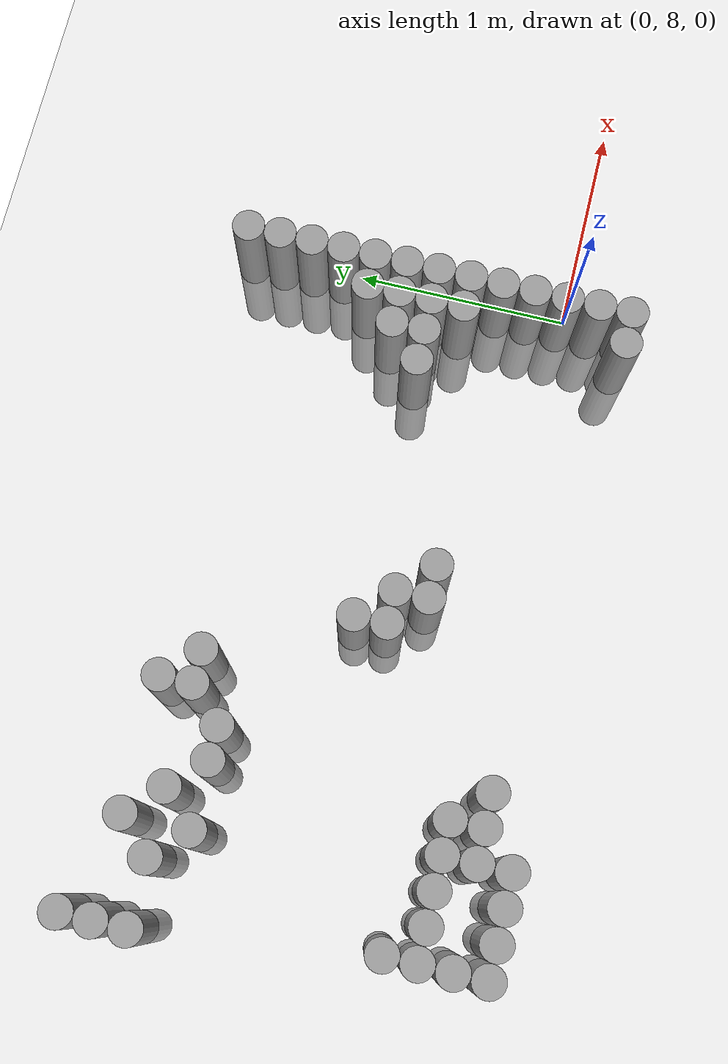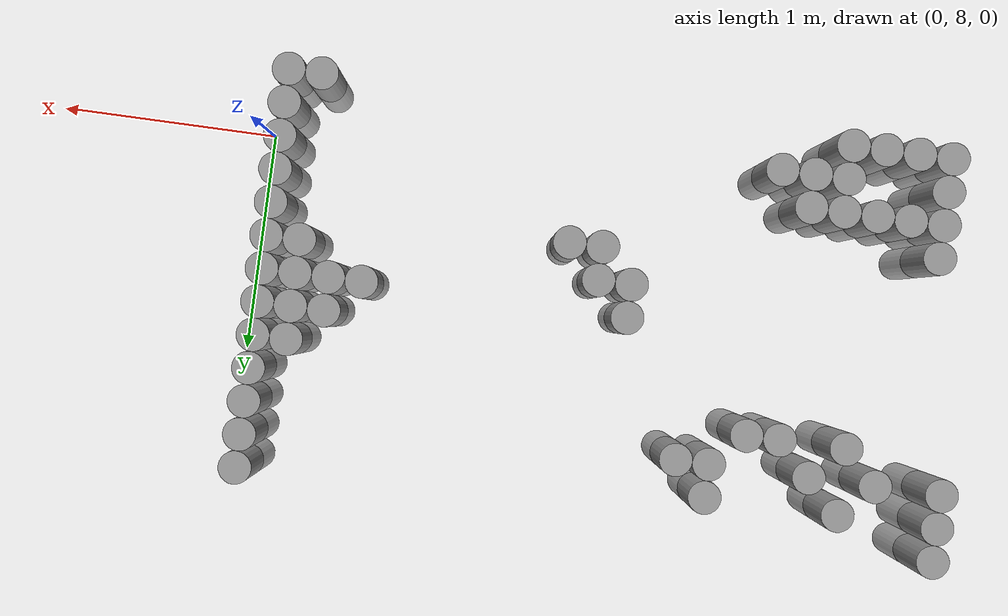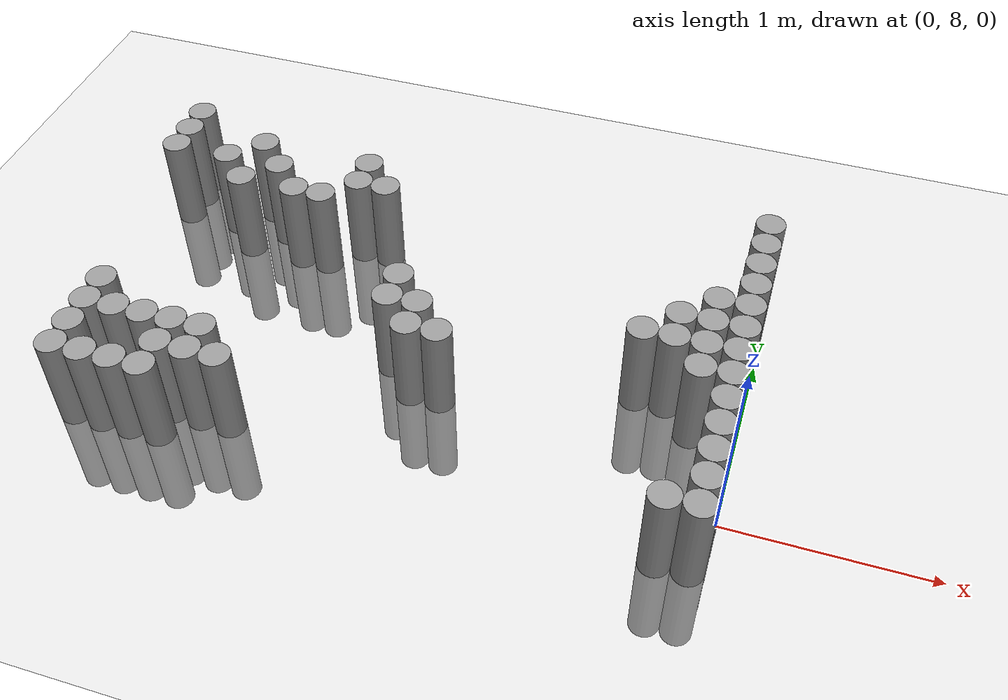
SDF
<sdf version="1.6">
 <world name="default">
  <model name="ground_plane">
   <static>1</static>
   <static>1</static>
   <link name="link">
    <collision name="collision">
     <geometry><plane><normal>0 0 1</normal><size>100 100</size></plane></geometry>
     <surface><friction><ode><mu>100</mu><mu2>50</mu2></ode></friction></surface>
    </collision>
    <visual name="visual">
     <cast_shadows>0</cast_shadows>
     <geometry><plane><normal>0 0 1</normal><size>100 100</size></plane></geometry>
     <material>
      <script><uri>file://media/materials/scripts/gazebo.material</uri><name>Gazebo/Grey</name></script>
     </material>
    </visual>
   </link>
  </model>
  <model name="unit_cylinder_152">
   <static>1</static>
   <pose>-3.225000 9.225000 0.000000 0.000000 0.000000 0.000000</pose>
   <link name="link">
    <inertial>
     <mass>1</mass>
     <inertia><ixx>0.145833</ixx><ixy>0</ixy><ixz>0</ixz><iyy>0.145833</iyy><iyz>0</iyz><izz>0.125</izz></inertia>
    </inertial>
    <collision name="collision">
     <geometry><cylinder><radius>0.075000</radius><length>1</length></cylinder></geometry>
    </collision>
    <visual name="visual">
     <geometry><cylinder><radius>0.075000</radius><length>1</length></cylinder></geometry>
     <material>
      <script><name>Gazebo/Grey</name><uri>file://media/materials/scripts/gazebo.material</uri></script>
     </material>
    </visual>
   </link>
  </model>
  <model name="unit_cylinder_153">
   <static>1</static>
   <pose>-3.225000 9.375000 0.000000 0.000000 0.000000 0.000000</pose>
   <link name="link">
    <inertial>
     <mass>1</mass>
     <inertia><ixx>0.145833</ixx><ixy>0</ixy><ixz>0</ixz><iyy>0.145833</iyy><iyz>0</iyz><izz>0.125</izz></inertia>
    </inertial>
    <collision name="collision">
     <geometry><cylinder><radius>0.075000</radius><length>1</length></cylinder></geometry>
    </collision>
    <visual name="visual">
     <geometry><cylinder><radius>0.075000</radius><length>1</length></cylinder></geometry>
     <material>
      <script><name>Gazebo/Grey</name><uri>file://media/materials/scripts/gazebo.material</uri></script>
     </material>
    </visual>
   </link>
  </model>
  <model name="unit_cylinder_154">
   <static>1</static>
   <pose>-3.225000 9.525000 0.000000 0.000000 0.000000 0.000000</pose>
   <link name="link">
    <inertial>
     <mass>1</mass>
     <inertia><ixx>0.145833</ixx><ixy>0</ixy><ixz>0</ixz><iyy>0.145833</iyy><iyz>0</iyz><izz>0.125</izz></inertia>
    </inertial>
    <collision name="collision">
     <geometry><cylinder><radius>0.075000</radius><length>1</length></cylinder></geometry>
    </collision>
    <visual name="visual">
     <geometry><cylinder><radius>0.075000</radius><length>1</length></cylinder></geometry>
     <material>
      <script><name>Gazebo/Grey</name><uri>file://media/materials/scripts/gazebo.material</uri></script>
     </material>
    </visual>
   </link>
  </model>
  <model name="unit_cylinder_155">
   <static>1</static>
   <pose>-3.075000 7.725000 0.000000 0.000000 0.000000 0.000000</pose>
   <link name="link">
    <inertial>
     <mass>1</mass>
     <inertia><ixx>0.145833</ixx><ixy>0</ixy><ixz>0</ixz><iyy>0.145833</iyy><iyz>0</iyz><izz>0.125</izz></inertia>
    </inertial>
    <collision name="collision">
     <geometry><cylinder><radius>0.075000</radius><length>1</length></cylinder></geometry>
    </collision>
    <visual name="visual">
     <geometry><cylinder><radius>0.075000</radius><length>1</length></cylinder></geometry>
     <material>
      <script><name>Gazebo/Grey</name><uri>file://media/materials/scripts/gazebo.material</uri></script>
     </material>
    </visual>
   </link>
  </model>
  <model name="unit_cylinder_156">
   <static>1</static>
   <pose>-3.075000 7.875000 0.000000 0.000000 0.000000 0.000000</pose>
   <link name="link">
    <inertial>
     <mass>1</mass>
     <inertia><ixx>0.145833</ixx><ixy>0</ixy><ixz>0</ixz><iyy>0.145833</iyy><iyz>0</iyz><izz>0.125</izz></inertia>
    </inertial>
    <collision name="collision">
     <geometry><cylinder><radius>0.075000</radius><length>1</length></cylinder></geometry>
    </collision>
    <visual name="visual">
     <geometry><cylinder><radius>0.075000</radius><length>1</length></cylinder></geometry>
     <material>
      <script><name>Gazebo/Grey</name><uri>file://media/materials/scripts/gazebo.material</uri></script>
     </material>
    </visual>
   </link>
  </model>
  <model name="unit_cylinder_157">
   <static>1</static>
   <pose>-3.075000 8.025000 0.000000 0.000000 0.000000 0.000000</pose>
   <link name="link">
    <inertial>
     <mass>1</mass>
     <inertia><ixx>0.145833</ixx><ixy>0</ixy><ixz>0</ixz><iyy>0.145833</iyy><iyz>0</iyz><izz>0.125</izz></inertia>
    </inertial>
    <collision name="collision">
     <geometry><cylinder><radius>0.075000</radius><length>1</length></cylinder></geometry>
    </collision>
    <visual name="visual">
     <geometry><cylinder><radius>0.075000</radius><length>1</length></cylinder></geometry>
     <material>
      <script><name>Gazebo/Grey</name><uri>file://media/materials/scripts/gazebo.material</uri></script>
     </material>
    </visual>
   </link>
  </model>
  <model name="unit_cylinder_158">
   <static>1</static>
   <pose>-3.075000 8.175000 0.000000 0.000000 0.000000 0.000000</pose>
   <link name="link">
    <inertial>
     <mass>1</mass>
     <inertia><ixx>0.145833</ixx><ixy>0</ixy><ixz>0</ixz><iyy>0.145833</iyy><iyz>0</iyz><izz>0.125</izz></inertia>
    </inertial>
    <collision name="collision">
     <geometry><cylinder><radius>0.075000</radius><length>1</length></cylinder></geometry>
    </collision>
    <visual name="visual">
     <geometry><cylinder><radius>0.075000</radius><length>1</length></cylinder></geometry>
     <material>
      <script><name>Gazebo/Grey</name><uri>file://media/materials/scripts/gazebo.material</uri></script>
     </material>
    </visual>
   </link>
  </model>
  <model name="unit_cylinder_160">
   <static>1</static>
   <pose>-2.925000 7.725000 0.000000 0.000000 0.000000 0.000000</pose>
   <link name="link">
    <inertial>
     <mass>1</mass>
     <inertia><ixx>0.145833</ixx><ixy>0</ixy><ixz>0</ixz><iyy>0.145833</iyy><iyz>0</iyz><izz>0.125</izz></inertia>
    </inertial>
    <collision name="collision">
     <geometry><cylinder><radius>0.075000</radius><length>1</length></cylinder></geometry>
    </collision>
    <visual name="visual">
     <geometry><cylinder><radius>0.075000</radius><length>1</length></cylinder></geometry>
     <material>
      <script><name>Gazebo/Grey</name><uri>file://media/materials/scripts/gazebo.material</uri></script>
     </material>
    </visual>
   </link>
  </model>
  <model name="unit_cylinder_161">
   <static>1</static>
   <pose>-2.925000 8.025000 0.000000 0.000000 0.000000 0.000000</pose>
   <link name="link">
    <inertial>
     <mass>1</mass>
     <inertia><ixx>0.145833</ixx><ixy>0</ixy><ixz>0</ixz><iyy>0.145833</iyy><iyz>0</iyz><izz>0.125</izz></inertia>
    </inertial>
    <collision name="collision">
     <geometry><cylinder><radius>0.075000</radius><length>1</length></cylinder></geometry>
    </collision>
    <visual name="visual">
     <geometry><cylinder><radius>0.075000</radius><length>1</length></cylinder></geometry>
     <material>
      <script><name>Gazebo/Grey</name><uri>file://media/materials/scripts/gazebo.material</uri></script>
     </material>
    </visual>
   </link>
  </model>
  <model name="unit_cylinder_162">
   <static>1</static>
   <pose>-2.925000 9.225000 0.000000 0.000000 0.000000 0.000000</pose>
   <link name="link">
    <inertial>
     <mass>1</mass>
     <inertia><ixx>0.145833</ixx><ixy>0</ixy><ixz>0</ixz><iyy>0.145833</iyy><iyz>0</iyz><izz>0.125</izz></inertia>
    </inertial>
    <collision name="collision">
     <geometry><cylinder><radius>0.075000</radius><length>1</length></cylinder></geometry>
    </collision>
    <visual name="visual">
     <geometry><cylinder><radius>0.075000</radius><length>1</length></cylinder></geometry>
     <material>
      <script><name>Gazebo/Grey</name><uri>file://media/materials/scripts/gazebo.material</uri></script>
     </material>
    </visual>
   </link>
  </model>
  <model name="unit_cylinder_167">
   <static>1</static>
   <pose>-2.775000 7.725000 0.000000 0.000000 0.000000 0.000000</pose>
   <link name="link">
    <inertial>
     <mass>1</mass>
     <inertia><ixx>0.145833</ixx><ixy>0</ixy><ixz>0</ixz><iyy>0.145833</iyy><iyz>0</iyz><izz>0.125</izz></inertia>
    </inertial>
    <collision name="collision">
     <geometry><cylinder><radius>0.075000</radius><length>1</length></cylinder></geometry>
    </collision>
    <visual name="visual">
     <geometry><cylinder><radius>0.075000</radius><length>1</length></cylinder></geometry>
     <material>
      <script><name>Gazebo/Grey</name><uri>file://media/materials/scripts/gazebo.material</uri></script>
     </material>
    </visual>
   </link>
  </model>
  <model name="unit_cylinder_168">
   <static>1</static>
   <pose>-2.775000 8.025000 0.000000 0.000000 0.000000 0.000000</pose>
   <link name="link">
    <inertial>
     <mass>1</mass>
     <inertia><ixx>0.145833</ixx><ixy>0</ixy><ixz>0</ixz><iyy>0.145833</iyy><iyz>0</iyz><izz>0.125</izz></inertia>
    </inertial>
    <collision name="collision">
     <geometry><cylinder><radius>0.075000</radius><length>1</length></cylinder></geometry>
    </collision>
    <visual name="visual">
     <geometry><cylinder><radius>0.075000</radius><length>1</length></cylinder></geometry>
     <material>
      <script><name>Gazebo/Grey</name><uri>file://media/materials/scripts/gazebo.material</uri></script>
     </material>
    </visual>
   </link>
  </model>
  <model name="unit_cylinder_169">
   <static>1</static>
   <pose>-2.775000 9.075000 0.000000 0.000000 0.000000 0.000000</pose>
   <link name="link">
    <inertial>
     <mass>1</mass>
     <inertia><ixx>0.145833</ixx><ixy>0</ixy><ixz>0</ixz><iyy>0.145833</iyy><iyz>0</iyz><izz>0.125</izz></inertia>
    </inertial>
    <collision name="collision">
     <geometry><cylinder><radius>0.075000</radius><length>1</length></cylinder></geometry>
    </collision>
    <visual name="visual">
     <geometry><cylinder><radius>0.075000</radius><length>1</length></cylinder></geometry>
     <material>
      <script><name>Gazebo/Grey</name><uri>file://media/materials/scripts/gazebo.material</uri></script>
     </material>
    </visual>
   </link>
  </model>
  <model name="unit_cylinder_170">
   <static>1</static>
   <pose>-2.775000 9.375000 0.000000 0.000000 0.000000 0.000000</pose>
   <link name="link">
    <inertial>
     <mass>1</mass>
     <inertia><ixx>0.145833</ixx><ixy>0</ixy><ixz>0</ixz><iyy>0.145833</iyy><iyz>0</iyz><izz>0.125</izz></inertia>
    </inertial>
    <collision name="collision">
     <geometry><cylinder><radius>0.075000</radius><length>1</length></cylinder></geometry>
    </collision>
    <visual name="visual">
     <geometry><cylinder><radius>0.075000</radius><length>1</length></cylinder></geometry>
     <material>
      <script><name>Gazebo/Grey</name><uri>file://media/materials/scripts/gazebo.material</uri></script>
     </material>
    </visual>
   </link>
  </model>
  <model name="unit_cylinder_173">
   <static>1</static>
   <pose>-2.625000 7.725000 0.000000 0.000000 0.000000 0.000000</pose>
   <link name="link">
    <inertial>
     <mass>1</mass>
     <inertia><ixx>0.145833</ixx><ixy>0</ixy><ixz>0</ixz><iyy>0.145833</iyy><iyz>0</iyz><izz>0.125</izz></inertia>
    </inertial>
    <collision name="collision">
     <geometry><cylinder><radius>0.075000</radius><length>1</length></cylinder></geometry>
    </collision>
    <visual name="visual">
     <geometry><cylinder><radius>0.075000</radius><length>1</length></cylinder></geometry>
     <material>
      <script><name>Gazebo/Grey</name><uri>file://media/materials/scripts/gazebo.material</uri></script>
     </material>
    </visual>
   </link>
  </model>
  <model name="unit_cylinder_174">
   <static>1</static>
   <pose>-2.625000 7.875000 0.000000 0.000000 0.000000 0.000000</pose>
   <link name="link">
    <inertial>
     <mass>1</mass>
     <inertia><ixx>0.145833</ixx><ixy>0</ixy><ixz>0</ixz><iyy>0.145833</iyy><iyz>0</iyz><izz>0.125</izz></inertia>
    </inertial>
    <collision name="collision">
     <geometry><cylinder><radius>0.075000</radius><length>1</length></cylinder></geometry>
    </collision>
    <visual name="visual">
     <geometry><cylinder><radius>0.075000</radius><length>1</length></cylinder></geometry>
     <material>
      <script><name>Gazebo/Grey</name><uri>file://media/materials/scripts/gazebo.material</uri></script>
     </material>
    </visual>
   </link>
  </model>
  <model name="unit_cylinder_175">
   <static>1</static>
   <pose>-2.625000 8.025000 0.000000 0.000000 0.000000 0.000000</pose>
   <link name="link">
    <inertial>
     <mass>1</mass>
     <inertia><ixx>0.145833</ixx><ixy>0</ixy><ixz>0</ixz><iyy>0.145833</iyy><iyz>0</iyz><izz>0.125</izz></inertia>
    </inertial>
    <collision name="collision">
     <geometry><cylinder><radius>0.075000</radius><length>1</length></cylinder></geometry>
    </collision>
    <visual name="visual">
     <geometry><cylinder><radius>0.075000</radius><length>1</length></cylinder></geometry>
     <material>
      <script><name>Gazebo/Grey</name><uri>file://media/materials/scripts/gazebo.material</uri></script>
     </material>
    </visual>
   </link>
  </model>
  <model name="unit_cylinder_176">
   <static>1</static>
   <pose>-2.625000 9.225000 0.000000 0.000000 0.000000 0.000000</pose>
   <link name="link">
    <inertial>
     <mass>1</mass>
     <inertia><ixx>0.145833</ixx><ixy>0</ixy><ixz>0</ixz><iyy>0.145833</iyy><iyz>0</iyz><izz>0.125</izz></inertia>
    </inertial>
    <collision name="collision">
     <geometry><cylinder><radius>0.075000</radius><length>1</length></cylinder></geometry>
    </collision>
    <visual name="visual">
     <geometry><cylinder><radius>0.075000</radius><length>1</length></cylinder></geometry>
     <material>
      <script><name>Gazebo/Grey</name><uri>file://media/materials/scripts/gazebo.material</uri></script>
     </material>
    </visual>
   </link>
  </model>
  <model name="unit_cylinder_180">
   <static>1</static>
   <pose>-2.475000 7.875000 0.000000 0.000000 0.000000 0.000000</pose>
   <link name="link">
    <inertial>
     <mass>1</mass>
     <inertia><ixx>0.145833</ixx><ixy>0</ixy><ixz>0</ixz><iyy>0.145833</iyy><iyz>0</iyz><izz>0.125</izz></inertia>
    </inertial>
    <collision name="collision">
     <geometry><cylinder><radius>0.075000</radius><length>1</length></cylinder></geometry>
    </collision>
    <visual name="visual">
     <geometry><cylinder><radius>0.075000</radius><length>1</length></cylinder></geometry>
     <material>
      <script><name>Gazebo/Grey</name><uri>file://media/materials/scripts/gazebo.material</uri></script>
     </material>
    </visual>
   </link>
  </model>
  <model name="unit_cylinder_181">
   <static>1</static>
   <pose>-2.475000 8.025000 0.000000 0.000000 0.000000 0.000000</pose>
   <link name="link">
    <inertial>
     <mass>1</mass>
     <inertia><ixx>0.145833</ixx><ixy>0</ixy><ixz>0</ixz><iyy>0.145833</iyy><iyz>0</iyz><izz>0.125</izz></inertia>
    </inertial>
    <collision name="collision">
     <geometry><cylinder><radius>0.075000</radius><length>1</length></cylinder></geometry>
    </collision>
    <visual name="visual">
     <geometry><cylinder><radius>0.075000</radius><length>1</length></cylinder></geometry>
     <material>
      <script><name>Gazebo/Grey</name><uri>file://media/materials/scripts/gazebo.material</uri></script>
     </material>
    </visual>
   </link>
  </model>
  <model name="unit_cylinder_182">
   <static>1</static>
   <pose>-2.475000 9.075000 0.000000 0.000000 0.000000 0.000000</pose>
   <link name="link">
    <inertial>
     <mass>1</mass>
     <inertia><ixx>0.145833</ixx><ixy>0</ixy><ixz>0</ixz><iyy>0.145833</iyy><iyz>0</iyz><izz>0.125</izz></inertia>
    </inertial>
    <collision name="collision">
     <geometry><cylinder><radius>0.075000</radius><length>1</length></cylinder></geometry>
    </collision>
    <visual name="visual">
     <geometry><cylinder><radius>0.075000</radius><length>1</length></cylinder></geometry>
     <material>
      <script><name>Gazebo/Grey</name><uri>file://media/materials/scripts/gazebo.material</uri></script>
     </material>
    </visual>
   </link>
  </model>
  <model name="unit_cylinder_185">
   <static>1</static>
   <pose>-2.325000 7.875000 0.000000 0.000000 0.000000 0.000000</pose>
   <link name="link">
    <inertial>
     <mass>1</mass>
     <inertia><ixx>0.145833</ixx><ixy>0</ixy><ixz>0</ixz><iyy>0.145833</iyy><iyz>0</iyz><izz>0.125</izz></inertia>
    </inertial>
    <collision name="collision">
     <geometry><cylinder><radius>0.075000</radius><length>1</length></cylinder></geometry>
    </collision>
    <visual name="visual">
     <geometry><cylinder><radius>0.075000</radius><length>1</length></cylinder></geometry>
     <material>
      <script><name>Gazebo/Grey</name><uri>file://media/materials/scripts/gazebo.material</uri></script>
     </material>
    </visual>
   </link>
  </model>
  <model name="unit_cylinder_186">
   <static>1</static>
   <pose>-2.325000 9.075000 0.000000 0.000000 0.000000 0.000000</pose>
   <link name="link">
    <inertial>
     <mass>1</mass>
     <inertia><ixx>0.145833</ixx><ixy>0</ixy><ixz>0</ixz><iyy>0.145833</iyy><iyz>0</iyz><izz>0.125</izz></inertia>
    </inertial>
    <collision name="collision">
     <geometry><cylinder><radius>0.075000</radius><length>1</length></cylinder></geometry>
    </collision>
    <visual name="visual">
     <geometry><cylinder><radius>0.075000</radius><length>1</length></cylinder></geometry>
     <material>
      <script><name>Gazebo/Grey</name><uri>file://media/materials/scripts/gazebo.material</uri></script>
     </material>
    </visual>
   </link>
  </model>
  <model name="unit_cylinder_188">
   <static>1</static>
   <pose>-2.175000 9.225000 0.000000 0.000000 0.000000 0.000000</pose>
   <link name="link">
    <inertial>
     <mass>1</mass>
     <inertia><ixx>0.145833</ixx><ixy>0</ixy><ixz>0</ixz><iyy>0.145833</iyy><iyz>0</iyz><izz>0.125</izz></inertia>
    </inertial>
    <collision name="collision">
     <geometry><cylinder><radius>0.075000</radius><length>1</length></cylinder></geometry>
    </collision>
    <visual name="visual">
     <geometry><cylinder><radius>0.075000</radius><length>1</length></cylinder></geometry>
     <material>
      <script><name>Gazebo/Grey</name><uri>file://media/materials/scripts/gazebo.material</uri></script>
     </material>
    </visual>
   </link>
  </model>
  <model name="unit_cylinder_189">
   <static>1</static>
   <pose>-2.175000 9.375000 0.000000 0.000000 0.000000 0.000000</pose>
   <link name="link">
    <inertial>
     <mass>1</mass>
     <inertia><ixx>0.145833</ixx><ixy>0</ixy><ixz>0</ixz><iyy>0.145833</iyy><iyz>0</iyz><izz>0.125</izz></inertia>
    </inertial>
    <collision name="collision">
     <geometry><cylinder><radius>0.075000</radius><length>1</length></cylinder></geometry>
    </collision>
    <visual name="visual">
     <geometry><cylinder><radius>0.075000</radius><length>1</length></cylinder></geometry>
     <material>
      <script><name>Gazebo/Grey</name><uri>file://media/materials/scripts/gazebo.material</uri></script>
     </material>
    </visual>
   </link>
  </model>
  <model name="unit_cylinder_190">
   <static>1</static>
   <pose>-2.025000 9.225000 0.000000 0.000000 0.000000 0.000000</pose>
   <link name="link">
    <inertial>
     <mass>1</mass>
     <inertia><ixx>0.145833</ixx><ixy>0</ixy><ixz>0</ixz><iyy>0.145833</iyy><iyz>0</iyz><izz>0.125</izz></inertia>
    </inertial>
    <collision name="collision">
     <geometry><cylinder><radius>0.075000</radius><length>1</length></cylinder></geometry>
    </collision>
    <visual name="visual">
     <geometry><cylinder><radius>0.075000</radius><length>1</length></cylinder></geometry>
     <material>
      <script><name>Gazebo/Grey</name><uri>file://media/materials/scripts/gazebo.material</uri></script>
     </material>
    </visual>
   </link>
  </model>
  <model name="unit_cylinder_195">
   <static>1</static>
   <pose>-1.725000 8.475000 0.000000 0.000000 0.000000 0.000000</pose>
   <link name="link">
    <inertial>
     <mass>1</mass>
     <inertia><ixx>0.145833</ixx><ixy>0</ixy><ixz>0</ixz><iyy>0.145833</iyy><iyz>0</iyz><izz>0.125</izz></inertia>
    </inertial>
    <collision name="collision">
     <geometry><cylinder><radius>0.075000</radius><length>1</length></cylinder></geometry>
    </collision>
    <visual name="visual">
     <geometry><cylinder><radius>0.075000</radius><length>1</length></cylinder></geometry>
     <material>
      <script><name>Gazebo/Grey</name><uri>file://media/materials/scripts/gazebo.material</uri></script>
     </material>
    </visual>
   </link>
  </model>
  <model name="unit_cylinder_196">
   <static>1</static>
   <pose>-1.725000 8.625000 0.000000 0.000000 0.000000 0.000000</pose>
   <link name="link">
    <inertial>
     <mass>1</mass>
     <inertia><ixx>0.145833</ixx><ixy>0</ixy><ixz>0</ixz><iyy>0.145833</iyy><iyz>0</iyz><izz>0.125</izz></inertia>
    </inertial>
    <collision name="collision">
     <geometry><cylinder><radius>0.075000</radius><length>1</length></cylinder></geometry>
    </collision>
    <visual name="visual">
     <geometry><cylinder><radius>0.075000</radius><length>1</length></cylinder></geometry>
     <material>
      <script><name>Gazebo/Grey</name><uri>file://media/materials/scripts/gazebo.material</uri></script>
     </material>
    </visual>
   </link>
  </model>
  <model name="unit_cylinder_197">
   <static>1</static>
   <pose>-1.575000 8.325000 0.000000 0.000000 0.000000 0.000000</pose>
   <link name="link">
    <inertial>
     <mass>1</mass>
     <inertia><ixx>0.145833</ixx><ixy>0</ixy><ixz>0</ixz><iyy>0.145833</iyy><iyz>0</iyz><izz>0.125</izz></inertia>
    </inertial>
    <collision name="collision">
     <geometry><cylinder><radius>0.075000</radius><length>1</length></cylinder></geometry>
    </collision>
    <visual name="visual">
     <geometry><cylinder><radius>0.075000</radius><length>1</length></cylinder></geometry>
     <material>
      <script><name>Gazebo/Grey</name><uri>file://media/materials/scripts/gazebo.material</uri></script>
     </material>
    </visual>
   </link>
  </model>
  <model name="unit_cylinder_198">
   <static>1</static>
   <pose>-1.575000 8.475000 0.000000 0.000000 0.000000 0.000000</pose>
   <link name="link">
    <inertial>
     <mass>1</mass>
     <inertia><ixx>0.145833</ixx><ixy>0</ixy><ixz>0</ixz><iyy>0.145833</iyy><iyz>0</iyz><izz>0.125</izz></inertia>
    </inertial>
    <collision name="collision">
     <geometry><cylinder><radius>0.075000</radius><length>1</length></cylinder></geometry>
    </collision>
    <visual name="visual">
     <geometry><cylinder><radius>0.075000</radius><length>1</length></cylinder></geometry>
     <material>
      <script><name>Gazebo/Grey</name><uri>file://media/materials/scripts/gazebo.material</uri></script>
     </material>
    </visual>
   </link>
  </model>
  <model name="unit_cylinder_199">
   <static>1</static>
   <pose>-1.425000 8.325000 0.000000 0.000000 0.000000 0.000000</pose>
   <link name="link">
    <inertial>
     <mass>1</mass>
     <inertia><ixx>0.145833</ixx><ixy>0</ixy><ixz>0</ixz><iyy>0.145833</iyy><iyz>0</iyz><izz>0.125</izz></inertia>
    </inertial>
    <collision name="collision">
     <geometry><cylinder><radius>0.075000</radius><length>1</length></cylinder></geometry>
    </collision>
    <visual name="visual">
     <geometry><cylinder><radius>0.075000</radius><length>1</length></cylinder></geometry>
     <material>
      <script><name>Gazebo/Grey</name><uri>file://media/materials/scripts/gazebo.material</uri></script>
     </material>
    </visual>
   </link>
  </model>
  <model name="unit_cylinder_204">
   <static>1</static>
   <pose>-0.525000 8.625000 0.000000 0.000000 0.000000 0.000000</pose>
   <link name="link">
    <inertial>
     <mass>1</mass>
     <inertia><ixx>0.145833</ixx><ixy>0</ixy><ixz>0</ixz><iyy>0.145833</iyy><iyz>0</iyz><izz>0.125</izz></inertia>
    </inertial>
    <collision name="collision">
     <geometry><cylinder><radius>0.075000</radius><length>1</length></cylinder></geometry>
    </collision>
    <visual name="visual">
     <geometry><cylinder><radius>0.075000</radius><length>1</length></cylinder></geometry>
     <material>
      <script><name>Gazebo/Grey</name><uri>file://media/materials/scripts/gazebo.material</uri></script>
     </material>
    </visual>
   </link>
  </model>
  <model name="unit_cylinder_215">
   <static>1</static>
   <pose>-0.375000 8.625000 0.000000 0.000000 0.000000 0.000000</pose>
   <link name="link">
    <inertial>
     <mass>1</mass>
     <inertia><ixx>0.145833</ixx><ixy>0</ixy><ixz>0</ixz><iyy>0.145833</iyy><iyz>0</iyz><izz>0.125</izz></inertia>
    </inertial>
    <collision name="collision">
     <geometry><cylinder><radius>0.075000</radius><length>1</length></cylinder></geometry>
    </collision>
    <visual name="visual">
     <geometry><cylinder><radius>0.075000</radius><length>1</length></cylinder></geometry>
     <material>
      <script><name>Gazebo/Grey</name><uri>file://media/materials/scripts/gazebo.material</uri></script>
     </material>
    </visual>
   </link>
  </model>
  <model name="unit_cylinder_216">
   <static>1</static>
   <pose>-0.375000 8.775000 0.000000 0.000000 0.000000 0.000000</pose>
   <link name="link">
    <inertial>
     <mass>1</mass>
     <inertia><ixx>0.145833</ixx><ixy>0</ixy><ixz>0</ixz><iyy>0.145833</iyy><iyz>0</iyz><izz>0.125</izz></inertia>
    </inertial>
    <collision name="collision">
     <geometry><cylinder><radius>0.075000</radius><length>1</length></cylinder></geometry>
    </collision>
    <visual name="visual">
     <geometry><cylinder><radius>0.075000</radius><length>1</length></cylinder></geometry>
     <material>
      <script><name>Gazebo/Grey</name><uri>file://media/materials/scripts/gazebo.material</uri></script>
     </material>
    </visual>
   </link>
  </model>
  <model name="unit_cylinder_225">
   <static>1</static>
   <pose>-0.225000 7.725000 0.000000 0.000000 0.000000 0.000000</pose>
   <link name="link">
    <inertial>
     <mass>1</mass>
     <inertia><ixx>0.145833</ixx><ixy>0</ixy><ixz>0</ixz><iyy>0.145833</iyy><iyz>0</iyz><izz>0.125</izz></inertia>
    </inertial>
    <collision name="collision">
     <geometry><cylinder><radius>0.075000</radius><length>1</length></cylinder></geometry>
    </collision>
    <visual name="visual">
     <geometry><cylinder><radius>0.075000</radius><length>1</length></cylinder></geometry>
     <material>
      <script><name>Gazebo/Grey</name><uri>file://media/materials/scripts/gazebo.material</uri></script>
     </material>
    </visual>
   </link>
  </model>
  <model name="unit_cylinder_226">
   <static>1</static>
   <pose>-0.225000 8.475000 0.000000 0.000000 0.000000 0.000000</pose>
   <link name="link">
    <inertial>
     <mass>1</mass>
     <inertia><ixx>0.145833</ixx><ixy>0</ixy><ixz>0</ixz><iyy>0.145833</iyy><iyz>0</iyz><izz>0.125</izz></inertia>
    </inertial>
    <collision name="collision">
     <geometry><cylinder><radius>0.075000</radius><length>1</length></cylinder></geometry>
    </collision>
    <visual name="visual">
     <geometry><cylinder><radius>0.075000</radius><length>1</length></cylinder></geometry>
     <material>
      <script><name>Gazebo/Grey</name><uri>file://media/materials/scripts/gazebo.material</uri></script>
     </material>
    </visual>
   </link>
  </model>
  <model name="unit_cylinder_227">
   <static>1</static>
   <pose>-0.225000 8.625000 0.000000 0.000000 0.000000 0.000000</pose>
   <link name="link">
    <inertial>
     <mass>1</mass>
     <inertia><ixx>0.145833</ixx><ixy>0</ixy><ixz>0</ixz><iyy>0.145833</iyy><iyz>0</iyz><izz>0.125</izz></inertia>
    </inertial>
    <collision name="collision">
     <geometry><cylinder><radius>0.075000</radius><length>1</length></cylinder></geometry>
    </collision>
    <visual name="visual">
     <geometry><cylinder><radius>0.075000</radius><length>1</length></cylinder></geometry>
     <material>
      <script><name>Gazebo/Grey</name><uri>file://media/materials/scripts/gazebo.material</uri></script>
     </material>
    </visual>
   </link>
  </model>
  <model name="unit_cylinder_228">
   <static>1</static>
   <pose>-0.225000 8.775000 0.000000 0.000000 0.000000 0.000000</pose>
   <link name="link">
    <inertial>
     <mass>1</mass>
     <inertia><ixx>0.145833</ixx><ixy>0</ixy><ixz>0</ixz><iyy>0.145833</iyy><iyz>0</iyz><izz>0.125</izz></inertia>
    </inertial>
    <collision name="collision">
     <geometry><cylinder><radius>0.075000</radius><length>1</length></cylinder></geometry>
    </collision>
    <visual name="visual">
     <geometry><cylinder><radius>0.075000</radius><length>1</length></cylinder></geometry>
     <material>
      <script><name>Gazebo/Grey</name><uri>file://media/materials/scripts/gazebo.material</uri></script>
     </material>
    </visual>
   </link>
  </model>
  <model name="unit_cylinder_229">
   <static>1</static>
   <pose>-0.225000 8.925000 0.000000 0.000000 0.000000 0.000000</pose>
   <link name="link">
    <inertial>
     <mass>1</mass>
     <inertia><ixx>0.145833</ixx><ixy>0</ixy><ixz>0</ixz><iyy>0.145833</iyy><iyz>0</iyz><izz>0.125</izz></inertia>
    </inertial>
    <collision name="collision">
     <geometry><cylinder><radius>0.075000</radius><length>1</length></cylinder></geometry>
    </collision>
    <visual name="visual">
     <geometry><cylinder><radius>0.075000</radius><length>1</length></cylinder></geometry>
     <material>
      <script><name>Gazebo/Grey</name><uri>file://media/materials/scripts/gazebo.material</uri></script>
     </material>
    </visual>
   </link>
  </model>
  <model name="unit_cylinder_247">
   <static>1</static>
   <pose>-0.075000 7.725000 0.000000 0.000000 0.000000 0.000000</pose>
   <link name="link">
    <inertial>
     <mass>1</mass>
     <inertia><ixx>0.145833</ixx><ixy>0</ixy><ixz>0</ixz><iyy>0.145833</iyy><iyz>0</iyz><izz>0.125</izz></inertia>
    </inertial>
    <collision name="collision">
     <geometry><cylinder><radius>0.075000</radius><length>1</length></cylinder></geometry>
    </collision>
    <visual name="visual">
     <geometry><cylinder><radius>0.075000</radius><length>1</length></cylinder></geometry>
     <material>
      <script><name>Gazebo/Grey</name><uri>file://media/materials/scripts/gazebo.material</uri></script>
     </material>
    </visual>
   </link>
  </model>
  <model name="unit_cylinder_248">
   <static>1</static>
   <pose>-0.075000 7.875000 0.000000 0.000000 0.000000 0.000000</pose>
   <link name="link">
    <inertial>
     <mass>1</mass>
     <inertia><ixx>0.145833</ixx><ixy>0</ixy><ixz>0</ixz><iyy>0.145833</iyy><iyz>0</iyz><izz>0.125</izz></inertia>
    </inertial>
    <collision name="collision">
     <geometry><cylinder><radius>0.075000</radius><length>1</length></cylinder></geometry>
    </collision>
    <visual name="visual">
     <geometry><cylinder><radius>0.075000</radius><length>1</length></cylinder></geometry>
     <material>
      <script><name>Gazebo/Grey</name><uri>file://media/materials/scripts/gazebo.material</uri></script>
     </material>
    </visual>
   </link>
  </model>
  <model name="unit_cylinder_249">
   <static>1</static>
   <pose>-0.075000 8.025000 0.000000 0.000000 0.000000 0.000000</pose>
   <link name="link">
    <inertial>
     <mass>1</mass>
     <inertia><ixx>0.145833</ixx><ixy>0</ixy><ixz>0</ixz><iyy>0.145833</iyy><iyz>0</iyz><izz>0.125</izz></inertia>
    </inertial>
    <collision name="collision">
     <geometry><cylinder><radius>0.075000</radius><length>1</length></cylinder></geometry>
    </collision>
    <visual name="visual">
     <geometry><cylinder><radius>0.075000</radius><length>1</length></cylinder></geometry>
     <material>
      <script><name>Gazebo/Grey</name><uri>file://media/materials/scripts/gazebo.material</uri></script>
     </material>
    </visual>
   </link>
  </model>
  <model name="unit_cylinder_250">
   <static>1</static>
   <pose>-0.075000 8.175000 0.000000 0.000000 0.000000 0.000000</pose>
   <link name="link">
    <inertial>
     <mass>1</mass>
     <inertia><ixx>0.145833</ixx><ixy>0</ixy><ixz>0</ixz><iyy>0.145833</iyy><iyz>0</iyz><izz>0.125</izz></inertia>
    </inertial>
    <collision name="collision">
     <geometry><cylinder><radius>0.075000</radius><length>1</length></cylinder></geometry>
    </collision>
    <visual name="visual">
     <geometry><cylinder><radius>0.075000</radius><length>1</length></cylinder></geometry>
     <material>
      <script><name>Gazebo/Grey</name><uri>file://media/materials/scripts/gazebo.material</uri></script>
     </material>
    </visual>
   </link>
  </model>
  <model name="unit_cylinder_251">
   <static>1</static>
   <pose>-0.075000 8.325000 0.000000 0.000000 0.000000 0.000000</pose>
   <link name="link">
    <inertial>
     <mass>1</mass>
     <inertia><ixx>0.145833</ixx><ixy>0</ixy><ixz>0</ixz><iyy>0.145833</iyy><iyz>0</iyz><izz>0.125</izz></inertia>
    </inertial>
    <collision name="collision">
     <geometry><cylinder><radius>0.075000</radius><length>1</length></cylinder></geometry>
    </collision>
    <visual name="visual">
     <geometry><cylinder><radius>0.075000</radius><length>1</length></cylinder></geometry>
     <material>
      <script><name>Gazebo/Grey</name><uri>file://media/materials/scripts/gazebo.material</uri></script>
     </material>
    </visual>
   </link>
  </model>
  <model name="unit_cylinder_252">
   <static>1</static>
   <pose>-0.075000 8.475000 0.000000 0.000000 0.000000 0.000000</pose>
   <link name="link">
    <inertial>
     <mass>1</mass>
     <inertia><ixx>0.145833</ixx><ixy>0</ixy><ixz>0</ixz><iyy>0.145833</iyy><iyz>0</iyz><izz>0.125</izz></inertia>
    </inertial>
    <collision name="collision">
     <geometry><cylinder><radius>0.075000</radius><length>1</length></cylinder></geometry>
    </collision>
    <visual name="visual">
     <geometry><cylinder><radius>0.075000</radius><length>1</length></cylinder></geometry>
     <material>
      <script><name>Gazebo/Grey</name><uri>file://media/materials/scripts/gazebo.material</uri></script>
     </material>
    </visual>
   </link>
  </model>
  <model name="unit_cylinder_253">
   <static>1</static>
   <pose>-0.075000 8.625000 0.000000 0.000000 0.000000 0.000000</pose>
   <link name="link">
    <inertial>
     <mass>1</mass>
     <inertia><ixx>0.145833</ixx><ixy>0</ixy><ixz>0</ixz><iyy>0.145833</iyy><iyz>0</iyz><izz>0.125</izz></inertia>
    </inertial>
    <collision name="collision">
     <geometry><cylinder><radius>0.075000</radius><length>1</length></cylinder></geometry>
    </collision>
    <visual name="visual">
     <geometry><cylinder><radius>0.075000</radius><length>1</length></cylinder></geometry>
     <material>
      <script><name>Gazebo/Grey</name><uri>file://media/materials/scripts/gazebo.material</uri></script>
     </material>
    </visual>
   </link>
  </model>
  <model name="unit_cylinder_254">
   <static>1</static>
   <pose>-0.075000 8.775000 0.000000 0.000000 0.000000 0.000000</pose>
   <link name="link">
    <inertial>
     <mass>1</mass>
     <inertia><ixx>0.145833</ixx><ixy>0</ixy><ixz>0</ixz><iyy>0.145833</iyy><iyz>0</iyz><izz>0.125</izz></inertia>
    </inertial>
    <collision name="collision">
     <geometry><cylinder><radius>0.075000</radius><length>1</length></cylinder></geometry>
    </collision>
    <visual name="visual">
     <geometry><cylinder><radius>0.075000</radius><length>1</length></cylinder></geometry>
     <material>
      <script><name>Gazebo/Grey</name><uri>file://media/materials/scripts/gazebo.material</uri></script>
     </material>
    </visual>
   </link>
  </model>
  <model name="unit_cylinder_255">
   <static>1</static>
   <pose>-0.075000 8.925000 0.000000 0.000000 0.000000 0.000000</pose>
   <link name="link">
    <inertial>
     <mass>1</mass>
     <inertia><ixx>0.145833</ixx><ixy>0</ixy><ixz>0</ixz><iyy>0.145833</iyy><iyz>0</iyz><izz>0.125</izz></inertia>
    </inertial>
    <collision name="collision">
     <geometry><cylinder><radius>0.075000</radius><length>1</length></cylinder></geometry>
    </collision>
    <visual name="visual">
     <geometry><cylinder><radius>0.075000</radius><length>1</length></cylinder></geometry>
     <material>
      <script><name>Gazebo/Grey</name><uri>file://media/materials/scripts/gazebo.material</uri></script>
     </material>
    </visual>
   </link>
  </model>
  <model name="unit_cylinder_256">
   <static>1</static>
   <pose>-0.075000 9.075000 0.000000 0.000000 0.000000 0.000000</pose>
   <link name="link">
    <inertial>
     <mass>1</mass>
     <inertia><ixx>0.145833</ixx><ixy>0</ixy><ixz>0</ixz><iyy>0.145833</iyy><iyz>0</iyz><izz>0.125</izz></inertia>
    </inertial>
    <collision name="collision">
     <geometry><cylinder><radius>0.075000</radius><length>1</length></cylinder></geometry>
    </collision>
    <visual name="visual">
     <geometry><cylinder><radius>0.075000</radius><length>1</length></cylinder></geometry>
     <material>
      <script><name>Gazebo/Grey</name><uri>file://media/materials/scripts/gazebo.material</uri></script>
     </material>
    </visual>
   </link>
  </model>
  <model name="unit_cylinder_257">
   <static>1</static>
   <pose>-0.075000 9.225000 0.000000 0.000000 0.000000 0.000000</pose>
   <link name="link">
    <inertial>
     <mass>1</mass>
     <inertia><ixx>0.145833</ixx><ixy>0</ixy><ixz>0</ixz><iyy>0.145833</iyy><iyz>0</iyz><izz>0.125</izz></inertia>
    </inertial>
    <collision name="collision">
     <geometry><cylinder><radius>0.075000</radius><length>1</length></cylinder></geometry>
    </collision>
    <visual name="visual">
     <geometry><cylinder><radius>0.075000</radius><length>1</length></cylinder></geometry>
     <material>
      <script><name>Gazebo/Grey</name><uri>file://media/materials/scripts/gazebo.material</uri></script>
     </material>
    </visual>
   </link>
  </model>
  <model name="unit_cylinder_258">
   <static>1</static>
   <pose>-0.075000 9.375000 0.000000 0.000000 0.000000 0.000000</pose>
   <link name="link">
    <inertial>
     <mass>1</mass>
     <inertia><ixx>0.145833</ixx><ixy>0</ixy><ixz>0</ixz><iyy>0.145833</iyy><iyz>0</iyz><izz>0.125</izz></inertia>
    </inertial>
    <collision name="collision">
     <geometry><cylinder><radius>0.075000</radius><length>1</length></cylinder></geometry>
    </collision>
    <visual name="visual">
     <geometry><cylinder><radius>0.075000</radius><length>1</length></cylinder></geometry>
     <material>
      <script><name>Gazebo/Grey</name><uri>file://media/materials/scripts/gazebo.material</uri></script>
     </material>
    </visual>
   </link>
  </model>
  <model name="unit_cylinder_259">
   <static>1</static>
   <pose>-0.075000 9.525000 0.000000 0.000000 0.000000 0.000000</pose>
   <link name="link">
    <inertial>
     <mass>1</mass>
     <inertia><ixx>0.145833</ixx><ixy>0</ixy><ixz>0</ixz><iyy>0.145833</iyy><iyz>0</iyz><izz>0.125</izz></inertia>
    </inertial>
    <collision name="collision">
     <geometry><cylinder><radius>0.075000</radius><length>1</length></cylinder></geometry>
    </collision>
    <visual name="visual">
     <geometry><cylinder><radius>0.075000</radius><length>1</length></cylinder></geometry>
     <material>
      <script><name>Gazebo/Grey</name><uri>file://media/materials/scripts/gazebo.material</uri></script>
     </material>
    </visual>
   </link>
  </model>
 </world>
</sdf>
